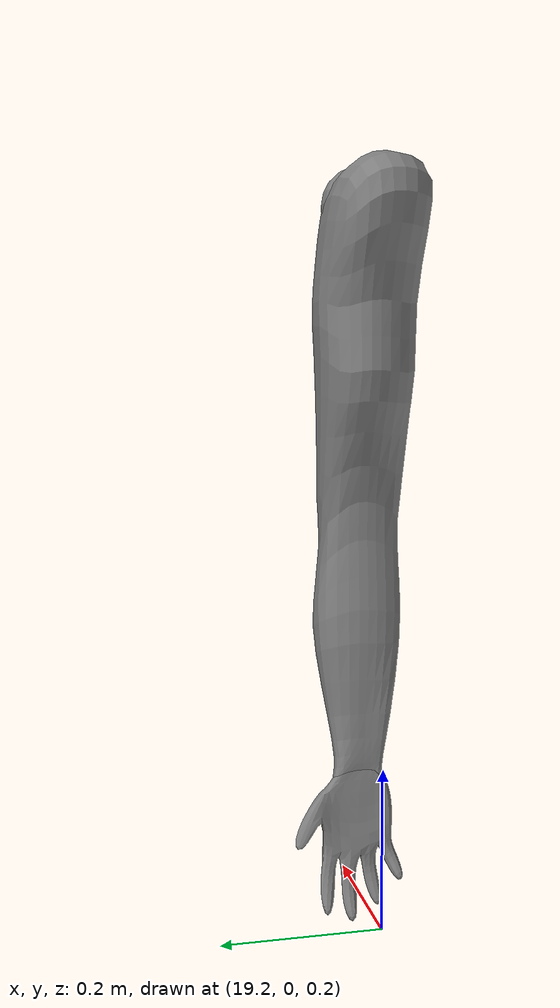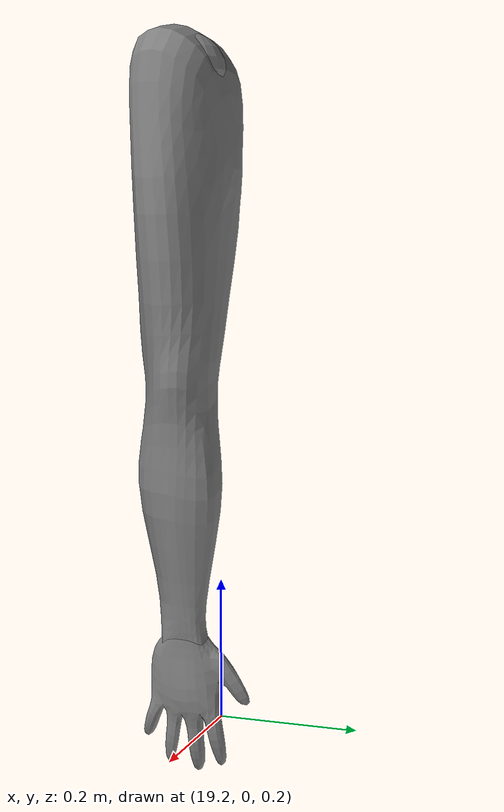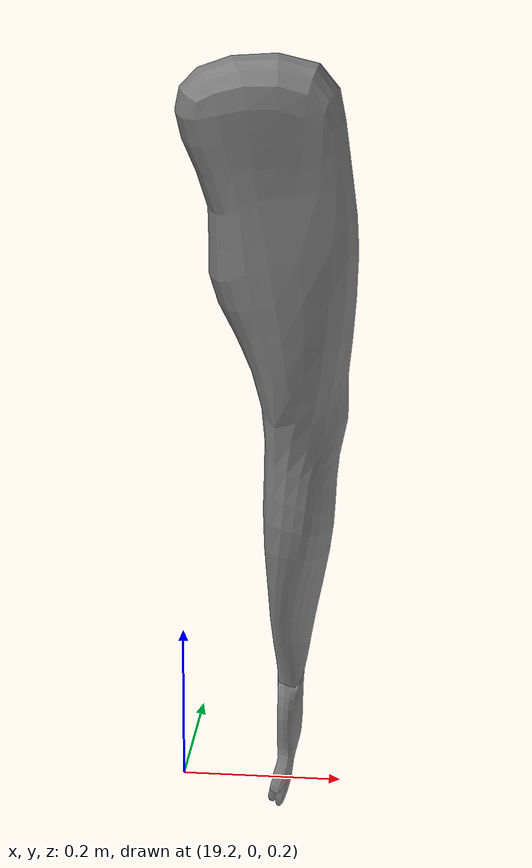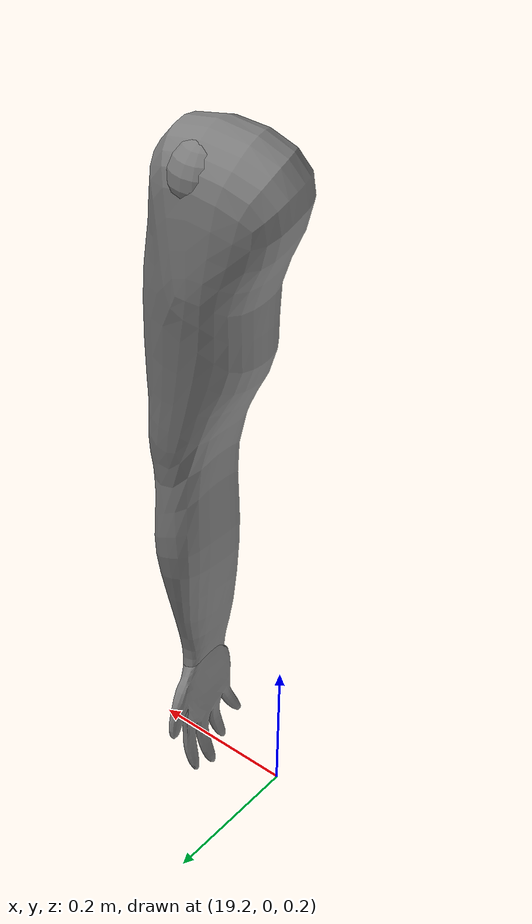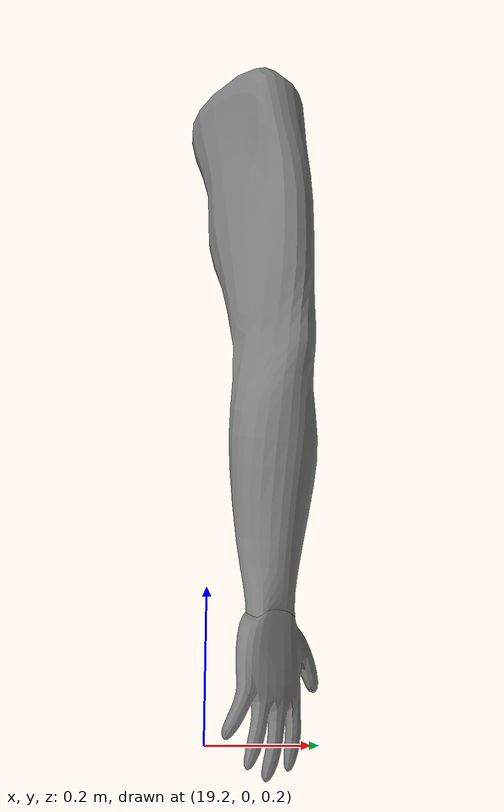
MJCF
<mujoco model="Hand">

    <compiler meshdir="meshes"/>

    <asset>
		<!-- importieren von stl files, texuren und erstellen von materials -->
		<mesh file="armteil.stl" />
		<mesh file="handteil.stl" />
        <material name="transparent" rgba="1 0 0 0"/>
    </asset>

	<worldbody>

		<body name="arm" pos="19.32 0 0.3" quat="1 0 0 0">
            <geom type="sphere" size=".05" pos="0 0 0.8"/>
            <joint name="armschwung" type="hinge" pos="0 0 0.8" axis="0 1 0" limited="true" range="-100 40" margin=".3"/>
                <geom type="mesh" mesh="armteil"/>
                <body name="hand" pos="0 0 0">
                    <geom type="mesh" mesh="handteil"/>
                    <body name="haltmagnet2" euler="0 0 -90">
                        <geom type="sphere" size=".01 " pos="0 -.12 -.14" material="transparent" margin="0.1" gap="0.1"/>
                    </body>
                    <body name="haltmagnet3" euler="0 0 -90">
                        <geom type="sphere" size=".01 " pos="0 -.12 .14" material="transparent" margin="0.1" gap="0.1"/>
                    </body>
                    <body name="haltmagnet4" euler="0 0 -90" >
                        <geom type="sphere" size=".01 " pos=".14 -.12 0" material="transparent" margin="0.1" gap="0.1"/>
                    </body>
                    <body name="haltmagnet5" euler="0 0 -90">
                        <geom type="sphere" size=".01 " pos="-.14 -.12 0" material="transparent" margin="0.1" gap="0.1"/>
                    </body>
                </body>
            </body>

	</worldbody>

	<actuator>

		<adhesion name="adhere_arm3" body="haltmagnet2" ctrlrange="0 10" gain="500"/>
		<adhesion name="adhere_arm4" body="haltmagnet3" ctrlrange="0 10" gain="500"/>
		<adhesion name="adhere_arm5" body="haltmagnet4" ctrlrange="0 10" gain="500"/>
		<adhesion name="adhere_arm6" body="haltmagnet5" ctrlrange="0 10" gain="500"/>
        <motor name="schwung" joint="armschwung" ctrllimited="true" ctrlrange="-100 100" gear= "50"/>

	</actuator>

</mujoco>
